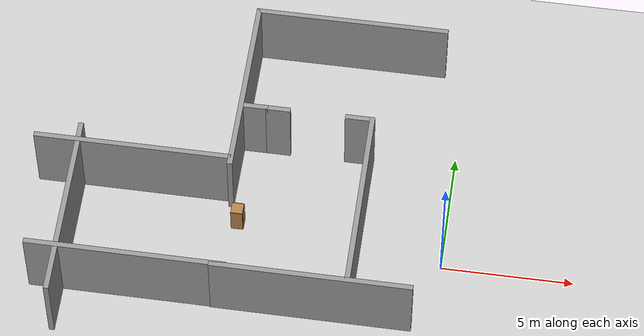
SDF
<sdf version="1.4">
 <world name="default">
  <model name="ground_plane">
   <static>1</static>
   <link name="link">
    <collision name="collision">
     <geometry><plane><normal>0 0 1</normal><size>100 100</size></plane></geometry>
     <surface><friction><ode><mu>100</mu><mu2>50</mu2></ode></friction></surface>
    </collision>
    <visual name="visual">
     <cast_shadows>0</cast_shadows>
     <geometry><plane><normal>0 0 1</normal><size>100 100</size></plane></geometry>
     <material>
      <script><uri>file://media/materials/scripts/gazebo.material</uri><name>Gazebo/Grey</name></script>
     </material>
    </visual>
    <velocity_decay><linear>0</linear><angular>0</angular></velocity_decay>
   </link>
  </model>
  <model name="grey_wall_0">
   <static>1</static>
   <link name="link">
    <pose>0 0 1.4 0 -0 0</pose>
    <collision name="collision"><geometry><box><size>7.5 0.2 2.8</size></box></geometry></collision>
    <visual name="visual">
     <cast_shadows>0</cast_shadows>
     <geometry><box><size>7.5 0.2 2.8</size></box></geometry>
     <material>
      <script>
       <uri>model://grey_wall/materials/scripts</uri>
       <uri>model://grey_wall/materials/textures</uri>
       <name>vrc/grey_wall</name>
      </script>
     </material>
    </visual>
    <velocity_decay><linear>0</linear><angular>0</angular></velocity_decay>
   </link>
   <pose>-4.53321 -2.83506 0 0 -0 0</pose>
  </model>
  <model name="grey_wall_2">
   <static>1</static>
   <link name="link">
    <pose>0 0 1.4 0 -0 0</pose>
    <collision name="collision"><geometry><box><size>7.5 0.2 2.8</size></box></geometry></collision>
    <visual name="visual">
     <cast_shadows>0</cast_shadows>
     <geometry><box><size>7.5 0.2 2.8</size></box></geometry>
     <material>
      <script>
       <uri>model://grey_wall/materials/scripts</uri>
       <uri>model://grey_wall/materials/textures</uri>
       <name>vrc/grey_wall</name>
      </script>
     </material>
    </visual>
    <velocity_decay><linear>0</linear><angular>0</angular></velocity_decay>
   </link>
   <pose>-3.20895 0.824081 0 0 -0 1.57557</pose>
  </model>
  <model name="grey_wall_8">
   <static>1</static>
   <link name="link">
    <pose>0 0 1.4 0 -0 0</pose>
    <collision name="collision"><geometry><box><size>7.5 0.2 2.8</size></box></geometry></collision>
    <visual name="visual">
     <cast_shadows>0</cast_shadows>
     <geometry><box><size>7.5 0.2 2.8</size></box></geometry>
     <material>
      <script>
       <uri>model://grey_wall/materials/scripts</uri>
       <uri>model://grey_wall/materials/textures</uri>
       <name>vrc/grey_wall</name>
      </script>
     </material>
    </visual>
    <velocity_decay><linear>0</linear><angular>0</angular></velocity_decay>
   </link>
   <pose>-8.25909 5.41188 0 0 -0 1.5757</pose>
  </model>
  <model name="grey_wall_9">
   <static>1</static>
   <link name="link">
    <pose>0 0 1.4 0 -0 0</pose>
    <collision name="collision"><geometry><box><size>7.5 0.2 2.8</size></box></geometry></collision>
    <visual name="visual">
     <cast_shadows>0</cast_shadows>
     <geometry><box><size>7.5 0.2 2.8</size></box></geometry>
     <material>
      <script>
       <uri>model://grey_wall/materials/scripts</uri>
       <uri>model://grey_wall/materials/textures</uri>
       <name>vrc/grey_wall</name>
      </script>
     </material>
    </visual>
    <velocity_decay><linear>0</linear><angular>0</angular></velocity_decay>
   </link>
   <pose>-4.6171 9.09785 0 0 -0 0</pose>
  </model>
  <model name="cabinet_0">
   <static>1</static>
   <link name="cabinet_bottom_plate">
    <inertial>
     <pose>0 0 -1 0 -0 0</pose>
     <inertia><ixx>2.05</ixx><ixy>0</ixy><ixz>0</ixz><iyy>2.05</iyy><iyz>0</iyz><izz>2.05</izz></inertia>
     <mass>25</mass>
    </inertial>
    <collision name="cabinet_bottom_plate_geom">
     <pose>0 0 0.01 0 -0 0</pose>
     <geometry><box><size>0.45 0.45 0.02</size></box></geometry>
    </collision>
    <visual name="cabinet_bottom_plate_geom_visual">
     <pose>0 0 0.01 0 -0 0</pose>
     <geometry><box><size>0.45 0.45 0.02</size></box></geometry>
     <material>
      <script><uri>file://media/materials/scripts/gazebo.material</uri><name>Gazebo/Wood</name></script>
     </material>
    </visual>
    <collision name="cabinet_bottom_plate_geom_cabinet_back_plate">
     <pose>0.235 0 0.51 0 -0 0</pose>
     <geometry><box><size>0.02 0.45 1.02</size></box></geometry>
    </collision>
    <visual name="cabinet_bottom_plate_geom_cabinet_back_plate_visual">
     <pose>0.235 0 0.51 0 -0 0</pose>
     <geometry><box><size>0.02 0.45 1.02</size></box></geometry>
     <material>
      <script><uri>file://media/materials/scripts/gazebo.material</uri><name>Gazebo/Wood</name></script>
     </material>
    </visual>
    <collision name="cabinet_bottom_plate_geom_cabinet_left_plate">
     <pose>0 0.235 0.51 0 -0 0</pose>
     <geometry><box><size>0.45 0.02 1.02</size></box></geometry>
    </collision>
    <visual name="cabinet_bottom_plate_geom_cabinet_left_plate_visual">
     <pose>0 0.235 0.51 0 -0 0</pose>
     <geometry><box><size>0.45 0.02 1.02</size></box></geometry>
     <material>
      <script><uri>file://media/materials/scripts/gazebo.material</uri><name>Gazebo/Wood</name></script>
     </material>
    </visual>
    <collision name="cabinet_bottom_plate_geom_cabinet_middle_plate">
     <pose>0 0 0.51 0 -0 0</pose>
     <geometry><box><size>0.45 0.45 0.02</size></box></geometry>
    </collision>
    <visual name="cabinet_bottom_plate_geom_cabinet_middle_plate_visual">
     <pose>0 0 0.51 0 -0 0</pose>
     <geometry><box><size>0.45 0.45 0.02</size></box></geometry>
     <material>
      <script><uri>file://media/materials/scripts/gazebo.material</uri><name>Gazebo/Wood</name></script>
     </material>
    </visual>
    <collision name="cabinet_bottom_plate_geom_cabinet_right_plate">
     <pose>0 -0.235 0.51 0 -0 0</pose>
     <geometry><box><size>0.45 0.02 1.02</size></box></geometry>
    </collision>
    <visual name="cabinet_bottom_plate_geom_cabinet_right_plate_visual">
     <pose>0 -0.235 0.51 0 -0 0</pose>
     <geometry><box><size>0.45 0.02 1.02</size></box></geometry>
     <material>
      <script><uri>file://media/materials/scripts/gazebo.material</uri><name>Gazebo/Wood</name></script>
     </material>
    </visual>
    <collision name="cabinet_bottom_plate_geom_cabinet_top_plate">
     <pose>0 0 1.01 0 -0 0</pose>
     <geometry><box><size>0.45 0.45 0.02</size></box></geometry>
    </collision>
    <visual name="cabinet_bottom_plate_geom_cabinet_top_plate_visual">
     <pose>0 0 1.01 0 -0 0</pose>
     <geometry><box><size>0.45 0.45 0.02</size></box></geometry>
     <material>
      <script><uri>file://media/materials/scripts/gazebo.material</uri><name>Gazebo/Wood</name></script>
     </material>
    </visual>
    <velocity_decay><linear>0</linear><angular>0</angular></velocity_decay>
   </link>
   <pose>-7.86683 0.925523 0 0 -0 0</pose>
  </model>
  <model name="bookshelf_0">
   <static>1</static>
   <link name="link">
    <inertial><mass>1</mass></inertial>
    <collision name="back">
     <pose>0 0.005 0.6 0 -0 0</pose>
     <geometry><box><size>0.9 0.01 1.2</size></box></geometry>
    </collision>
    <visual name="visual1">
     <pose>0 0.005 0.6 0 -0 0</pose>
     <geometry><box><size>0.9 0.01 1.2</size></box></geometry>
     <material>
      <script><uri>file://media/materials/scripts/gazebo.material</uri><name>Gazebo/Wood</name></script>
     </material>
    </visual>
    <collision name="left_side">
     <pose>0.45 -0.195 0.6 0 -0 0</pose>
     <geometry><box><size>0.02 0.4 1.2</size></box></geometry>
    </collision>
    <visual name="visual2">
     <pose>0.45 -0.195 0.6 0 -0 0</pose>
     <geometry><box><size>0.02 0.4 1.2</size></box></geometry>
     <material>
      <script><uri>file://media/materials/scripts/gazebo.material</uri><name>Gazebo/Wood</name></script>
     </material>
    </visual>
    <collision name="right_side">
     <pose>-0.45 -0.195 0.6 0 -0 0</pose>
     <geometry><box><size>0.02 0.4 1.2</size></box></geometry>
    </collision>
    <visual name="visual3">
     <pose>-0.45 -0.195 0.6 0 -0 0</pose>
     <geometry><box><size>0.02 0.4 1.2</size></box></geometry>
     <material>
      <script><uri>file://media/materials/scripts/gazebo.material</uri><name>Gazebo/Wood</name></script>
     </material>
    </visual>
    <collision name="bottom">
     <pose>0 -0.195 0.03 0 -0 0</pose>
     <geometry><box><size>0.88 0.4 0.06</size></box></geometry>
    </collision>
    <visual name="visual4">
     <pose>0 -0.195 0.03 0 -0 0</pose>
     <geometry><box><size>0.88 0.4 0.06</size></box></geometry>
     <material>
      <script><uri>file://media/materials/scripts/gazebo.material</uri><name>Gazebo/Wood</name></script>
     </material>
    </visual>
    <collision name="top">
     <pose>0 -0.195 1.19 0 -0 0</pose>
     <geometry><box><size>0.88 0.4 0.02</size></box></geometry>
    </collision>
    <visual name="visual5">
     <pose>0 -0.195 1.19 0 -0 0</pose>
     <geometry><box><size>0.88 0.4 0.02</size></box></geometry>
     <material>
      <script><uri>file://media/materials/scripts/gazebo.material</uri><name>Gazebo/Wood</name></script>
     </material>
    </visual>
    <collision name="low_shelf">
     <pose>0 -0.195 0.43 0 -0 0</pose>
     <geometry><box><size>0.88 0.4 0.02</size></box></geometry>
    </collision>
    <visual name="visual6">
     <pose>0 -0.195 0.43 0 -0 0</pose>
     <geometry><box><size>0.88 0.4 0.02</size></box></geometry>
     <material>
      <script><uri>file://media/materials/scripts/gazebo.material</uri><name>Gazebo/Wood</name></script>
     </material>
    </visual>
    <collision name="high_shelf">
     <pose>0 -0.195 0.8 0 -0 0</pose>
     <geometry><box><size>0.88 0.4 0.02</size></box></geometry>
    </collision>
    <visual name="visual7">
     <pose>0 -0.195 0.8 0 -0 0</pose>
     <geometry><box><size>0.88 0.4 0.02</size></box></geometry>
     <material>
      <script><uri>file://media/materials/scripts/gazebo.material</uri><name>Gazebo/Wood</name></script>
     </material>
    </visual>
    <velocity_decay><linear>0</linear><angular>0</angular></velocity_decay>
   </link>
   <pose>-3.90366 -2.11997 0 0 -0 0.763607</pose>
  </model>
  <model name="grey_wall_small_0">
   <static>1</static>
   <link name="link">
    <pose>0 0 1.4 0 -0 0</pose>
    <collision name="collision"><geometry><box><size>0.9375 0.2 2.8</size></box></geometry></collision>
    <visual name="visual">
     <cast_shadows>0</cast_shadows>
     <geometry><box><size>0.9375 0.2 2.8</size></box></geometry>
     <material>
      <script>
       <uri>model://grey_wall_small/materials/scripts</uri>
       <uri>model://grey_wall_small/materials/textures</uri>
       <name>vrc/grey_wall_small</name>
      </script>
     </material>
    </visual>
    <velocity_decay><linear>0</linear><angular>0</angular></velocity_decay>
   </link>
   <pose>-3.79075 4.47218 0 0 -0 0</pose>
  </model>
  <model name="grey_wall_small_3">
   <static>1</static>
   <link name="link">
    <pose>0 0 1.4 0 -0 0</pose>
    <collision name="collision"><geometry><box><size>0.9375 0.2 2.8</size></box></geometry></collision>
    <visual name="visual">
     <cast_shadows>0</cast_shadows>
     <geometry><box><size>0.9375 0.2 2.8</size></box></geometry>
     <material>
      <script>
       <uri>model://grey_wall_small/materials/scripts</uri>
       <uri>model://grey_wall_small/materials/textures</uri>
       <name>vrc/grey_wall_small</name>
      </script>
     </material>
    </visual>
    <velocity_decay><linear>0</linear><angular>0</angular></velocity_decay>
   </link>
   <pose>-7.6898 4.46929 0 0 -0 0</pose>
  </model>
  <model name="grey_wall_small_4">
   <static>1</static>
   <link name="link">
    <pose>0 0 1.4 0 -0 0</pose>
    <collision name="collision"><geometry><box><size>0.9375 0.2 2.8</size></box></geometry></collision>
    <visual name="visual">
     <cast_shadows>0</cast_shadows>
     <geometry><box><size>0.9375 0.2 2.8</size></box></geometry>
     <material>
      <script>
       <uri>model://grey_wall_small/materials/scripts</uri>
       <uri>model://grey_wall_small/materials/textures</uri>
       <name>vrc/grey_wall_small</name>
      </script>
     </material>
    </visual>
    <velocity_decay><linear>0</linear><angular>0</angular></velocity_decay>
   </link>
   <pose>-6.82457 4.46929 0 0 -0 0</pose>
  </model>
  <model name="cabinet_1">
   <static>1</static>
   <link name="cabinet_bottom_plate">
    <inertial>
     <pose>0 0 -1 0 -0 0</pose>
     <inertia><ixx>2.05</ixx><ixy>0</ixy><ixz>0</ixz><iyy>2.05</iyy><iyz>0</iyz><izz>2.05</izz></inertia>
     <mass>25</mass>
    </inertial>
    <collision name="cabinet_bottom_plate_geom">
     <pose>0 0 0.01 0 -0 0</pose>
     <geometry><box><size>0.45 0.45 0.02</size></box></geometry>
    </collision>
    <visual name="cabinet_bottom_plate_geom_visual">
     <pose>0 0 0.01 0 -0 0</pose>
     <geometry><box><size>0.45 0.45 0.02</size></box></geometry>
     <material>
      <script><uri>file://media/materials/scripts/gazebo.material</uri><name>Gazebo/Wood</name></script>
     </material>
    </visual>
    <collision name="cabinet_bottom_plate_geom_cabinet_back_plate">
     <pose>0.235 0 0.51 0 -0 0</pose>
     <geometry><box><size>0.02 0.45 1.02</size></box></geometry>
    </collision>
    <visual name="cabinet_bottom_plate_geom_cabinet_back_plate_visual">
     <pose>0.235 0 0.51 0 -0 0</pose>
     <geometry><box><size>0.02 0.45 1.02</size></box></geometry>
     <material>
      <script><uri>file://media/materials/scripts/gazebo.material</uri><name>Gazebo/Wood</name></script>
     </material>
    </visual>
    <collision name="cabinet_bottom_plate_geom_cabinet_left_plate">
     <pose>0 0.235 0.51 0 -0 0</pose>
     <geometry><box><size>0.45 0.02 1.02</size></box></geometry>
    </collision>
    <visual name="cabinet_bottom_plate_geom_cabinet_left_plate_visual">
     <pose>0 0.235 0.51 0 -0 0</pose>
     <geometry><box><size>0.45 0.02 1.02</size></box></geometry>
     <material>
      <script><uri>file://media/materials/scripts/gazebo.material</uri><name>Gazebo/Wood</name></script>
     </material>
    </visual>
    <collision name="cabinet_bottom_plate_geom_cabinet_middle_plate">
     <pose>0 0 0.51 0 -0 0</pose>
     <geometry><box><size>0.45 0.45 0.02</size></box></geometry>
    </collision>
    <visual name="cabinet_bottom_plate_geom_cabinet_middle_plate_visual">
     <pose>0 0 0.51 0 -0 0</pose>
     <geometry><box><size>0.45 0.45 0.02</size></box></geometry>
     <material>
      <script><uri>file://media/materials/scripts/gazebo.material</uri><name>Gazebo/Wood</name></script>
     </material>
    </visual>
    <collision name="cabinet_bottom_plate_geom_cabinet_right_plate">
     <pose>0 -0.235 0.51 0 -0 0</pose>
     <geometry><box><size>0.45 0.02 1.02</size></box></geometry>
    </collision>
    <visual name="cabinet_bottom_plate_geom_cabinet_right_plate_visual">
     <pose>0 -0.235 0.51 0 -0 0</pose>
     <geometry><box><size>0.45 0.02 1.02</size></box></geometry>
     <material>
      <script><uri>file://media/materials/scripts/gazebo.material</uri><name>Gazebo/Wood</name></script>
     </material>
    </visual>
    <collision name="cabinet_bottom_plate_geom_cabinet_top_plate">
     <pose>0 0 1.01 0 -0 0</pose>
     <geometry><box><size>0.45 0.45 0.02</size></box></geometry>
    </collision>
    <visual name="cabinet_bottom_plate_geom_cabinet_top_plate_visual">
     <pose>0 0 1.01 0 -0 0</pose>
     <geometry><box><size>0.45 0.45 0.02</size></box></geometry>
     <material>
      <script><uri>file://media/materials/scripts/gazebo.material</uri><name>Gazebo/Wood</name></script>
     </material>
    </visual>
    <velocity_decay><linear>0</linear><angular>0</angular></velocity_decay>
   </link>
   <pose>-7.8455 4.90192 0 0 -0 0.78721</pose>
  </model>
  <model name="grey_wall_6">
   <static>1</static>
   <link name="link">
    <pose>0 0 1.4 0 -0 0</pose>
    <collision name="collision"><geometry><box><size>7.5 0.2 2.8</size></box></geometry></collision>
    <visual name="visual">
     <cast_shadows>0</cast_shadows>
     <geometry><box><size>7.5 0.2 2.8</size></box></geometry>
     <material>
      <script>
       <uri>model://grey_wall/materials/scripts</uri>
       <uri>model://grey_wall/materials/textures</uri>
       <name>vrc/grey_wall</name>
      </script>
     </material>
    </visual>
    <velocity_decay><linear>0</linear><angular>0</angular></velocity_decay>
   </link>
   <pose>-12 2 0 0 -0 0</pose>
  </model>
  <model name="grey_wall_7">
   <static>1</static>
   <link name="link">
    <pose>0 0 1.4 0 -0 0</pose>
    <collision name="collision"><geometry><box><size>7.5 0.2 2.8</size></box></geometry></collision>
    <visual name="visual">
     <cast_shadows>0</cast_shadows>
     <geometry><box><size>7.5 0.2 2.8</size></box></geometry>
     <material>
      <script>
       <uri>model://grey_wall/materials/scripts</uri>
       <uri>model://grey_wall/materials/textures</uri>
       <name>vrc/grey_wall</name>
      </script>
     </material>
    </visual>
    <velocity_decay><linear>0</linear><angular>0</angular></velocity_decay>
   </link>
   <pose>-11.4021 -2.80665 0 0 -0 0</pose>
  </model>
  <model name="grey_wall_10">
   <static>1</static>
   <link name="link">
    <pose>0 0 1.4 0 -0 0</pose>
    <collision name="collision"><geometry><box><size>7.5 0.2 2.8</size></box></geometry></collision>
    <visual name="visual">
     <cast_shadows>0</cast_shadows>
     <geometry><box><size>7.5 0.2 2.8</size></box></geometry>
     <material>
      <script>
       <uri>model://grey_wall/materials/scripts</uri>
       <uri>model://grey_wall/materials/textures</uri>
       <name>vrc/grey_wall</name>
      </script>
     </material>
    </visual>
    <velocity_decay><linear>0</linear><angular>0</angular></velocity_decay>
   </link>
   <pose>-14 -1 0 0 0 -1.54799</pose>
  </model>
 </world>
</sdf>
